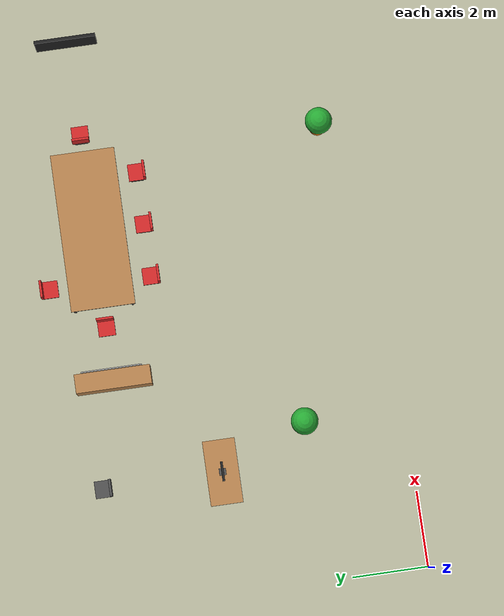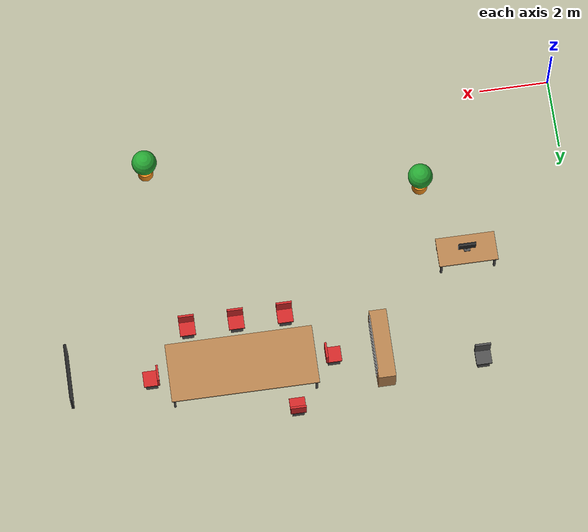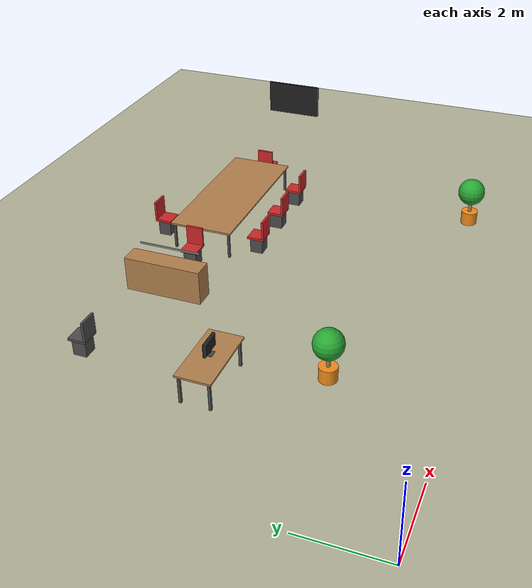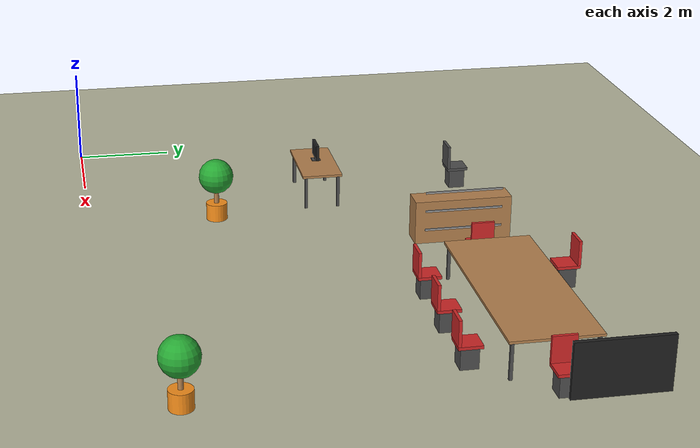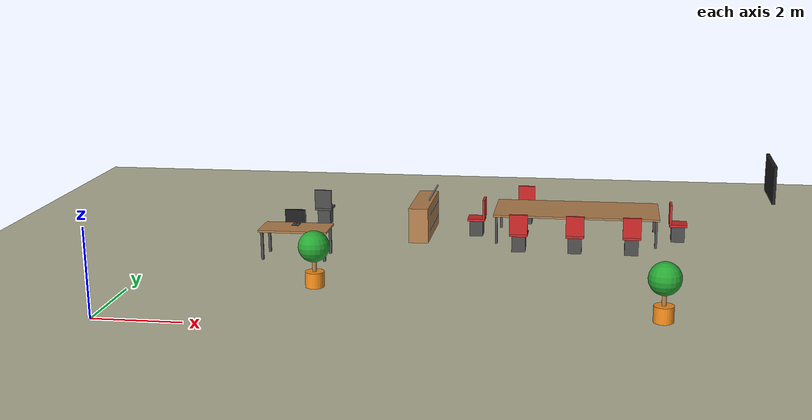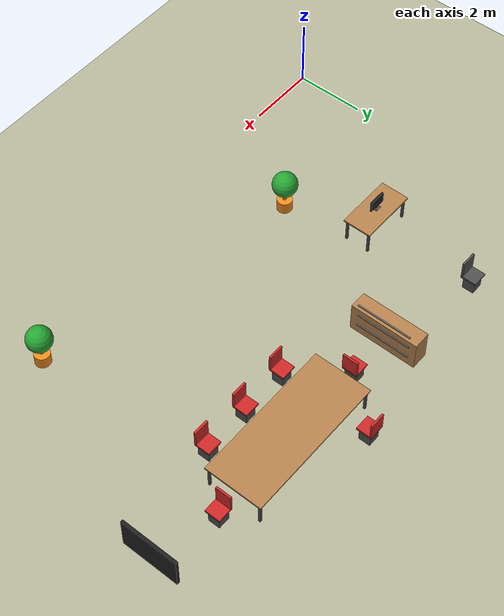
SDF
<sdf version="1.6">
 <world name="smart_building">
  <model name="ground_plane">
   <static>true</static>
   <link name="link">
    <collision name="collision">
     <geometry><plane><normal>0 0 1</normal><size>100 100</size></plane></geometry>
     <surface><friction><ode><mu>1.0</mu><mu2>1.0</mu2></ode></friction></surface>
    </collision>
    <visual name="visual">
     <geometry><plane><normal>0 0 1</normal><size>100 100</size></plane></geometry>
     <material>
      <script><uri>file://media/materials/scripts/gazebo.material</uri><name>Gazebo/Residential</name></script>
     </material>
    </visual>
   </link>
  </model>
  <model name="office_desk_2">
   <static>true</static>
   <pose>3.2000 5.0000 0.0000 0.0000 0.0000 0.0000</pose>
   <link name="link_0">
    <pose>0.0000 0.0000 0.7250 0.0000 0.0000 0.0000</pose>
    <collision name="link_0_collision">
     <geometry><box><size>1.7000 0.8500 0.0500</size></box></geometry>
    </collision>
    <visual name="link_0_visual">
     <geometry><box><size>1.7000 0.8500 0.0500</size></box></geometry>
     <material>
      <script><uri>file://media/materials/scripts/gazebo.material</uri><name>Gazebo/Wood</name></script>
     </material>
    </visual>
   </link>
   <link name="link_1">
    <pose>-0.7700 -0.3450 0.3500 0.0000 0.0000 0.0000</pose>
    <collision name="link_1_collision">
     <geometry><box><size>0.0600 0.0600 0.7000</size></box></geometry>
    </collision>
    <visual name="link_1_visual">
     <geometry><box><size>0.0600 0.0600 0.7000</size></box></geometry>
     <material>
      <script><uri>file://media/materials/scripts/gazebo.material</uri><name>Gazebo/DarkGrey</name></script>
     </material>
    </visual>
   </link>
   <link name="link_2">
    <pose>-0.7700 0.3450 0.3500 0.0000 0.0000 0.0000</pose>
    <collision name="link_2_collision">
     <geometry><box><size>0.0600 0.0600 0.7000</size></box></geometry>
    </collision>
    <visual name="link_2_visual">
     <geometry><box><size>0.0600 0.0600 0.7000</size></box></geometry>
     <material>
      <script><uri>file://media/materials/scripts/gazebo.material</uri><name>Gazebo/DarkGrey</name></script>
     </material>
    </visual>
   </link>
   <link name="link_3">
    <pose>0.7700 -0.3450 0.3500 0.0000 0.0000 0.0000</pose>
    <collision name="link_3_collision">
     <geometry><box><size>0.0600 0.0600 0.7000</size></box></geometry>
    </collision>
    <visual name="link_3_visual">
     <geometry><box><size>0.0600 0.0600 0.7000</size></box></geometry>
     <material>
      <script><uri>file://media/materials/scripts/gazebo.material</uri><name>Gazebo/DarkGrey</name></script>
     </material>
    </visual>
   </link>
   <link name="link_4">
    <pose>0.7700 0.3450 0.3500 0.0000 0.0000 0.0000</pose>
    <collision name="link_4_collision">
     <geometry><box><size>0.0600 0.0600 0.7000</size></box></geometry>
    </collision>
    <visual name="link_4_visual">
     <geometry><box><size>0.0600 0.0600 0.7000</size></box></geometry>
     <material>
      <script><uri>file://media/materials/scripts/gazebo.material</uri><name>Gazebo/DarkGrey</name></script>
     </material>
    </visual>
   </link>
   <link name="link_5">
    <pose>0.0000 0.0000 1.0300 0.0000 0.0000 0.0000</pose>
    <collision name="link_5_collision">
     <geometry><box><size>0.5000 0.0600 0.3200</size></box></geometry>
    </collision>
    <visual name="link_5_visual">
     <geometry><box><size>0.5000 0.0600 0.3200</size></box></geometry>
     <material>
      <script><uri>file://media/materials/scripts/gazebo.material</uri><name>Gazebo/FlatBlack</name></script>
     </material>
    </visual>
   </link>
   <link name="link_6">
    <pose>0.0000 0.0000 0.8100 0.0000 0.0000 0.0000</pose>
    <collision name="link_6_collision">
     <geometry><box><size>0.1800 0.1800 0.0200</size></box></geometry>
    </collision>
    <visual name="link_6_visual">
     <geometry><box><size>0.1800 0.1800 0.0200</size></box></geometry>
     <material>
      <script><uri>file://media/materials/scripts/gazebo.material</uri><name>Gazebo/DarkGrey</name></script>
     </material>
    </visual>
   </link>
   <link name="link_7">
    <pose>0.0000 0.0000 0.8700 0.0000 0.0000 0.0000</pose>
    <collision name="link_7_collision">
     <geometry><box><size>0.0500 0.0500 0.1200</size></box></geometry>
    </collision>
    <visual name="link_7_visual">
     <geometry><box><size>0.0500 0.0500 0.1200</size></box></geometry>
     <material>
      <script><uri>file://media/materials/scripts/gazebo.material</uri><name>Gazebo/DarkGrey</name></script>
     </material>
    </visual>
   </link>
  </model>
  <model name="office_chair_5">
   <static>true</static>
   <pose>3.2000 8.1500 0.0000 0.0000 0.0000 0.0000</pose>
   <link name="link_0">
    <pose>0.0000 0.0000 0.4400 0.0000 0.0000 0.0000</pose>
    <collision name="link_0_collision">
     <geometry><box><size>0.4500 0.4500 0.0600</size></box></geometry>
    </collision>
    <visual name="link_0_visual">
     <geometry><box><size>0.4500 0.4500 0.0600</size></box></geometry>
     <material>
      <script><uri>file://media/materials/scripts/gazebo.material</uri><name>Gazebo/DarkGrey</name></script>
     </material>
    </visual>
   </link>
   <link name="link_1">
    <pose>0.0000 -0.2000 0.7200 0.0000 0.0000 0.0000</pose>
    <collision name="link_1_collision">
     <geometry><box><size>0.4500 0.0600 0.5000</size></box></geometry>
    </collision>
    <visual name="link_1_visual">
     <geometry><box><size>0.4500 0.0600 0.5000</size></box></geometry>
     <material>
      <script><uri>file://media/materials/scripts/gazebo.material</uri><name>Gazebo/DarkGrey</name></script>
     </material>
    </visual>
   </link>
   <link name="link_2">
    <pose>0.0000 0.0000 0.2100 0.0000 0.0000 0.0000</pose>
    <collision name="link_2_collision">
     <geometry><box><size>0.3400 0.3400 0.4200</size></box></geometry>
    </collision>
    <visual name="link_2_visual">
     <geometry><box><size>0.3400 0.3400 0.4200</size></box></geometry>
     <material>
      <script><uri>file://media/materials/scripts/gazebo.material</uri><name>Gazebo/DarkGrey</name></script>
     </material>
    </visual>
   </link>
  </model>
  <model name="plant_office_b">
   <static>true</static>
   <pose>4.2000 2.7000 0.0000 0.0000 0.0000 0.0000</pose>
   <link name="link_0">
    <pose>0.0000 0.0000 0.1800 0.0000 0.0000 0.0000</pose>
    <collision name="link_0_collision">
     <geometry><cylinder><radius>0.2200</radius><length>0.3600</length></cylinder></geometry>
    </collision>
    <visual name="link_0_visual">
     <geometry><cylinder><radius>0.2200</radius><length>0.3600</length></cylinder></geometry>
     <material>
      <script><uri>file://media/materials/scripts/gazebo.material</uri><name>Gazebo/Orange</name></script>
     </material>
    </visual>
   </link>
   <link name="link_1">
    <pose>0.0000 0.0000 0.5000 0.0000 0.0000 0.0000</pose>
    <collision name="link_1_collision">
     <geometry><cylinder><radius>0.0500</radius><length>0.4000</length></cylinder></geometry>
    </collision>
    <visual name="link_1_visual">
     <geometry><cylinder><radius>0.0500</radius><length>0.4000</length></cylinder></geometry>
     <material>
      <script><uri>file://media/materials/scripts/gazebo.material</uri><name>Gazebo/Wood</name></script>
     </material>
    </visual>
   </link>
   <link name="link_2">
    <pose>0.0000 0.0000 0.9500 0.0000 0.0000 0.0000</pose>
    <collision name="link_2_collision"><geometry><sphere><radius>0.3600</radius></sphere></geometry></collision>
    <visual name="link_2_visual">
     <geometry><sphere><radius>0.3600</radius></sphere></geometry>
     <material>
      <script><uri>file://media/materials/scripts/gazebo.material</uri><name>Gazebo/Green</name></script>
     </material>
    </visual>
   </link>
  </model>
  <model name="meeting_table">
   <static>true</static>
   <pose>10.0000 7.5000 0.0000 0.0000 0.0000 0.0000</pose>
   <link name="link_0">
    <pose>0.0000 0.0000 0.7350 0.0000 0.0000 0.0000</pose>
    <collision name="link_0_collision">
     <geometry><box><size>4.2000 1.7000 0.0500</size></box></geometry>
    </collision>
    <visual name="link_0_visual">
     <geometry><box><size>4.2000 1.7000 0.0500</size></box></geometry>
     <material>
      <script><uri>file://media/materials/scripts/gazebo.material</uri><name>Gazebo/Wood</name></script>
     </material>
    </visual>
   </link>
   <link name="link_1">
    <pose>-2.0200 -0.7700 0.3550 0.0000 0.0000 0.0000</pose>
    <collision name="link_1_collision">
     <geometry><box><size>0.0600 0.0600 0.7100</size></box></geometry>
    </collision>
    <visual name="link_1_visual">
     <geometry><box><size>0.0600 0.0600 0.7100</size></box></geometry>
     <material>
      <script><uri>file://media/materials/scripts/gazebo.material</uri><name>Gazebo/DarkGrey</name></script>
     </material>
    </visual>
   </link>
   <link name="link_2">
    <pose>-2.0200 0.7700 0.3550 0.0000 0.0000 0.0000</pose>
    <collision name="link_2_collision">
     <geometry><box><size>0.0600 0.0600 0.7100</size></box></geometry>
    </collision>
    <visual name="link_2_visual">
     <geometry><box><size>0.0600 0.0600 0.7100</size></box></geometry>
     <material>
      <script><uri>file://media/materials/scripts/gazebo.material</uri><name>Gazebo/DarkGrey</name></script>
     </material>
    </visual>
   </link>
   <link name="link_3">
    <pose>2.0200 -0.7700 0.3550 0.0000 0.0000 0.0000</pose>
    <collision name="link_3_collision">
     <geometry><box><size>0.0600 0.0600 0.7100</size></box></geometry>
    </collision>
    <visual name="link_3_visual">
     <geometry><box><size>0.0600 0.0600 0.7100</size></box></geometry>
     <material>
      <script><uri>file://media/materials/scripts/gazebo.material</uri><name>Gazebo/DarkGrey</name></script>
     </material>
    </visual>
   </link>
   <link name="link_4">
    <pose>2.0200 0.7700 0.3550 0.0000 0.0000 0.0000</pose>
    <collision name="link_4_collision">
     <geometry><box><size>0.0600 0.0600 0.7100</size></box></geometry>
    </collision>
    <visual name="link_4_visual">
     <geometry><box><size>0.0600 0.0600 0.7100</size></box></geometry>
     <material>
      <script><uri>file://media/materials/scripts/gazebo.material</uri><name>Gazebo/DarkGrey</name></script>
     </material>
    </visual>
   </link>
  </model>
  <model name="meeting_chair_0">
   <static>true</static>
   <pose>8.6000 6.1500 0.0000 0.0000 0.0000 0.0000</pose>
   <link name="link_0">
    <pose>0.0000 0.0000 0.4400 0.0000 0.0000 0.0000</pose>
    <collision name="link_0_collision">
     <geometry><box><size>0.4500 0.4500 0.0600</size></box></geometry>
    </collision>
    <visual name="link_0_visual">
     <geometry><box><size>0.4500 0.4500 0.0600</size></box></geometry>
     <material>
      <script><uri>file://media/materials/scripts/gazebo.material</uri><name>Gazebo/RedBright</name></script>
     </material>
    </visual>
   </link>
   <link name="link_1">
    <pose>0.0000 -0.2000 0.7200 0.0000 0.0000 0.0000</pose>
    <collision name="link_1_collision">
     <geometry><box><size>0.4500 0.0600 0.5000</size></box></geometry>
    </collision>
    <visual name="link_1_visual">
     <geometry><box><size>0.4500 0.0600 0.5000</size></box></geometry>
     <material>
      <script><uri>file://media/materials/scripts/gazebo.material</uri><name>Gazebo/RedBright</name></script>
     </material>
    </visual>
   </link>
   <link name="link_2">
    <pose>0.0000 0.0000 0.2100 0.0000 0.0000 0.0000</pose>
    <collision name="link_2_collision">
     <geometry><box><size>0.3400 0.3400 0.4200</size></box></geometry>
    </collision>
    <visual name="link_2_visual">
     <geometry><box><size>0.3400 0.3400 0.4200</size></box></geometry>
     <material>
      <script><uri>file://media/materials/scripts/gazebo.material</uri><name>Gazebo/DarkGrey</name></script>
     </material>
    </visual>
   </link>
  </model>
  <model name="meeting_chair_1">
   <static>true</static>
   <pose>8.6000 8.8500 0.0000 0.0000 0.0000 3.1416</pose>
   <link name="link_0">
    <pose>0.0000 0.0000 0.4400 0.0000 0.0000 0.0000</pose>
    <collision name="link_0_collision">
     <geometry><box><size>0.4500 0.4500 0.0600</size></box></geometry>
    </collision>
    <visual name="link_0_visual">
     <geometry><box><size>0.4500 0.4500 0.0600</size></box></geometry>
     <material>
      <script><uri>file://media/materials/scripts/gazebo.material</uri><name>Gazebo/RedBright</name></script>
     </material>
    </visual>
   </link>
   <link name="link_1">
    <pose>0.0000 -0.2000 0.7200 0.0000 0.0000 0.0000</pose>
    <collision name="link_1_collision">
     <geometry><box><size>0.4500 0.0600 0.5000</size></box></geometry>
    </collision>
    <visual name="link_1_visual">
     <geometry><box><size>0.4500 0.0600 0.5000</size></box></geometry>
     <material>
      <script><uri>file://media/materials/scripts/gazebo.material</uri><name>Gazebo/RedBright</name></script>
     </material>
    </visual>
   </link>
   <link name="link_2">
    <pose>0.0000 0.0000 0.2100 0.0000 0.0000 0.0000</pose>
    <collision name="link_2_collision">
     <geometry><box><size>0.3400 0.3400 0.4200</size></box></geometry>
    </collision>
    <visual name="link_2_visual">
     <geometry><box><size>0.3400 0.3400 0.4200</size></box></geometry>
     <material>
      <script><uri>file://media/materials/scripts/gazebo.material</uri><name>Gazebo/DarkGrey</name></script>
     </material>
    </visual>
   </link>
  </model>
  <model name="meeting_chair_2">
   <static>true</static>
   <pose>10.0000 6.1500 0.0000 0.0000 0.0000 0.0000</pose>
   <link name="link_0">
    <pose>0.0000 0.0000 0.4400 0.0000 0.0000 0.0000</pose>
    <collision name="link_0_collision">
     <geometry><box><size>0.4500 0.4500 0.0600</size></box></geometry>
    </collision>
    <visual name="link_0_visual">
     <geometry><box><size>0.4500 0.4500 0.0600</size></box></geometry>
     <material>
      <script><uri>file://media/materials/scripts/gazebo.material</uri><name>Gazebo/RedBright</name></script>
     </material>
    </visual>
   </link>
   <link name="link_1">
    <pose>0.0000 -0.2000 0.7200 0.0000 0.0000 0.0000</pose>
    <collision name="link_1_collision">
     <geometry><box><size>0.4500 0.0600 0.5000</size></box></geometry>
    </collision>
    <visual name="link_1_visual">
     <geometry><box><size>0.4500 0.0600 0.5000</size></box></geometry>
     <material>
      <script><uri>file://media/materials/scripts/gazebo.material</uri><name>Gazebo/RedBright</name></script>
     </material>
    </visual>
   </link>
   <link name="link_2">
    <pose>0.0000 0.0000 0.2100 0.0000 0.0000 0.0000</pose>
    <collision name="link_2_collision">
     <geometry><box><size>0.3400 0.3400 0.4200</size></box></geometry>
    </collision>
    <visual name="link_2_visual">
     <geometry><box><size>0.3400 0.3400 0.4200</size></box></geometry>
     <material>
      <script><uri>file://media/materials/scripts/gazebo.material</uri><name>Gazebo/DarkGrey</name></script>
     </material>
    </visual>
   </link>
  </model>
  <model name="meeting_chair_4">
   <static>true</static>
   <pose>11.4000 6.1500 0.0000 0.0000 0.0000 0.0000</pose>
   <link name="link_0">
    <pose>0.0000 0.0000 0.4400 0.0000 0.0000 0.0000</pose>
    <collision name="link_0_collision">
     <geometry><box><size>0.4500 0.4500 0.0600</size></box></geometry>
    </collision>
    <visual name="link_0_visual">
     <geometry><box><size>0.4500 0.4500 0.0600</size></box></geometry>
     <material>
      <script><uri>file://media/materials/scripts/gazebo.material</uri><name>Gazebo/RedBright</name></script>
     </material>
    </visual>
   </link>
   <link name="link_1">
    <pose>0.0000 -0.2000 0.7200 0.0000 0.0000 0.0000</pose>
    <collision name="link_1_collision">
     <geometry><box><size>0.4500 0.0600 0.5000</size></box></geometry>
    </collision>
    <visual name="link_1_visual">
     <geometry><box><size>0.4500 0.0600 0.5000</size></box></geometry>
     <material>
      <script><uri>file://media/materials/scripts/gazebo.material</uri><name>Gazebo/RedBright</name></script>
     </material>
    </visual>
   </link>
   <link name="link_2">
    <pose>0.0000 0.0000 0.2100 0.0000 0.0000 0.0000</pose>
    <collision name="link_2_collision">
     <geometry><box><size>0.3400 0.3400 0.4200</size></box></geometry>
    </collision>
    <visual name="link_2_visual">
     <geometry><box><size>0.3400 0.3400 0.4200</size></box></geometry>
     <material>
      <script><uri>file://media/materials/scripts/gazebo.material</uri><name>Gazebo/DarkGrey</name></script>
     </material>
    </visual>
   </link>
  </model>
  <model name="meeting_chair_6">
   <static>true</static>
   <pose>7.4000 7.5000 0.0000 0.0000 0.0000 1.5708</pose>
   <link name="link_0">
    <pose>0.0000 0.0000 0.4400 0.0000 0.0000 0.0000</pose>
    <collision name="link_0_collision">
     <geometry><box><size>0.4500 0.4500 0.0600</size></box></geometry>
    </collision>
    <visual name="link_0_visual">
     <geometry><box><size>0.4500 0.4500 0.0600</size></box></geometry>
     <material>
      <script><uri>file://media/materials/scripts/gazebo.material</uri><name>Gazebo/RedBright</name></script>
     </material>
    </visual>
   </link>
   <link name="link_1">
    <pose>0.0000 -0.2000 0.7200 0.0000 0.0000 0.0000</pose>
    <collision name="link_1_collision">
     <geometry><box><size>0.4500 0.0600 0.5000</size></box></geometry>
    </collision>
    <visual name="link_1_visual">
     <geometry><box><size>0.4500 0.0600 0.5000</size></box></geometry>
     <material>
      <script><uri>file://media/materials/scripts/gazebo.material</uri><name>Gazebo/RedBright</name></script>
     </material>
    </visual>
   </link>
   <link name="link_2">
    <pose>0.0000 0.0000 0.2100 0.0000 0.0000 0.0000</pose>
    <collision name="link_2_collision">
     <geometry><box><size>0.3400 0.3400 0.4200</size></box></geometry>
    </collision>
    <visual name="link_2_visual">
     <geometry><box><size>0.3400 0.3400 0.4200</size></box></geometry>
     <material>
      <script><uri>file://media/materials/scripts/gazebo.material</uri><name>Gazebo/DarkGrey</name></script>
     </material>
    </visual>
   </link>
  </model>
  <model name="meeting_chair_7">
   <static>true</static>
   <pose>12.6000 7.5000 0.0000 0.0000 0.0000 -1.5708</pose>
   <link name="link_0">
    <pose>0.0000 0.0000 0.4400 0.0000 0.0000 0.0000</pose>
    <collision name="link_0_collision">
     <geometry><box><size>0.4500 0.4500 0.0600</size></box></geometry>
    </collision>
    <visual name="link_0_visual">
     <geometry><box><size>0.4500 0.4500 0.0600</size></box></geometry>
     <material>
      <script><uri>file://media/materials/scripts/gazebo.material</uri><name>Gazebo/RedBright</name></script>
     </material>
    </visual>
   </link>
   <link name="link_1">
    <pose>0.0000 -0.2000 0.7200 0.0000 0.0000 0.0000</pose>
    <collision name="link_1_collision">
     <geometry><box><size>0.4500 0.0600 0.5000</size></box></geometry>
    </collision>
    <visual name="link_1_visual">
     <geometry><box><size>0.4500 0.0600 0.5000</size></box></geometry>
     <material>
      <script><uri>file://media/materials/scripts/gazebo.material</uri><name>Gazebo/RedBright</name></script>
     </material>
    </visual>
   </link>
   <link name="link_2">
    <pose>0.0000 0.0000 0.2100 0.0000 0.0000 0.0000</pose>
    <collision name="link_2_collision">
     <geometry><box><size>0.3400 0.3400 0.4200</size></box></geometry>
    </collision>
    <visual name="link_2_visual">
     <geometry><box><size>0.3400 0.3400 0.4200</size></box></geometry>
     <material>
      <script><uri>file://media/materials/scripts/gazebo.material</uri><name>Gazebo/DarkGrey</name></script>
     </material>
    </visual>
   </link>
  </model>
  <model name="meeting_screen">
   <static>true</static>
   <pose>14.8500 7.5000 1.7000 0.0000 0.0000 1.5708</pose>
   <link name="link_0">
    <collision name="link_0_collision">
     <geometry><box><size>1.6000 0.0800 0.9500</size></box></geometry>
    </collision>
    <visual name="link_0_visual">
     <geometry><box><size>1.6000 0.0800 0.9500</size></box></geometry>
     <material>
      <script><uri>file://media/materials/scripts/gazebo.material</uri><name>Gazebo/FlatBlack</name></script>
     </material>
    </visual>
   </link>
  </model>
  <model name="meeting_sideboard">
   <static>true</static>
   <pose>6.0000 7.5000 0.0000 0.0000 0.0000 1.5708</pose>
   <link name="link_0">
    <pose>0.0000 0.0000 0.4500 0.0000 0.0000 0.0000</pose>
    <collision name="link_0_collision">
     <geometry><box><size>2.0000 0.5000 0.9000</size></box></geometry>
    </collision>
    <visual name="link_0_visual">
     <geometry><box><size>2.0000 0.5000 0.9000</size></box></geometry>
     <material>
      <script><uri>file://media/materials/scripts/gazebo.material</uri><name>Gazebo/Wood</name></script>
     </material>
    </visual>
   </link>
   <link name="link_1">
    <pose>0.0000 -0.2600 0.3000 0.0000 0.0000 0.0000</pose>
    <visual name="link_1_visual">
     <geometry><box><size>1.6000 0.0300 0.0400</size></box></geometry>
     <material>
      <script><uri>file://media/materials/scripts/gazebo.material</uri><name>Gazebo/Grey</name></script>
     </material>
    </visual>
   </link>
   <link name="link_2">
    <pose>0.0000 -0.2600 0.7000 0.0000 0.0000 0.0000</pose>
    <visual name="link_2_visual">
     <geometry><box><size>1.6000 0.0300 0.0400</size></box></geometry>
     <material>
      <script><uri>file://media/materials/scripts/gazebo.material</uri><name>Gazebo/Grey</name></script>
     </material>
    </visual>
   </link>
   <link name="link_3">
    <pose>0.0000 -0.2600 1.1000 0.0000 0.0000 0.0000</pose>
    <visual name="link_3_visual">
     <geometry><box><size>1.6000 0.0300 0.0400</size></box></geometry>
     <material>
      <script><uri>file://media/materials/scripts/gazebo.material</uri><name>Gazebo/Grey</name></script>
     </material>
    </visual>
   </link>
  </model>
  <model name="plant_corridor_2">
   <static>true</static>
   <pose>12.0000 1.2000 0.0000 0.0000 0.0000 0.0000</pose>
   <link name="link_0">
    <pose>0.0000 0.0000 0.1800 0.0000 0.0000 0.0000</pose>
    <collision name="link_0_collision">
     <geometry><cylinder><radius>0.2200</radius><length>0.3600</length></cylinder></geometry>
    </collision>
    <visual name="link_0_visual">
     <geometry><cylinder><radius>0.2200</radius><length>0.3600</length></cylinder></geometry>
     <material>
      <script><uri>file://media/materials/scripts/gazebo.material</uri><name>Gazebo/Orange</name></script>
     </material>
    </visual>
   </link>
   <link name="link_1">
    <pose>0.0000 0.0000 0.5000 0.0000 0.0000 0.0000</pose>
    <collision name="link_1_collision">
     <geometry><cylinder><radius>0.0500</radius><length>0.4000</length></cylinder></geometry>
    </collision>
    <visual name="link_1_visual">
     <geometry><cylinder><radius>0.0500</radius><length>0.4000</length></cylinder></geometry>
     <material>
      <script><uri>file://media/materials/scripts/gazebo.material</uri><name>Gazebo/Wood</name></script>
     </material>
    </visual>
   </link>
   <link name="link_2">
    <pose>0.0000 0.0000 0.9500 0.0000 0.0000 0.0000</pose>
    <collision name="link_2_collision"><geometry><sphere><radius>0.3600</radius></sphere></geometry></collision>
    <visual name="link_2_visual">
     <geometry><sphere><radius>0.3600</radius></sphere></geometry>
     <material>
      <script><uri>file://media/materials/scripts/gazebo.material</uri><name>Gazebo/Green</name></script>
     </material>
    </visual>
   </link>
  </model>
 </world>
</sdf>
